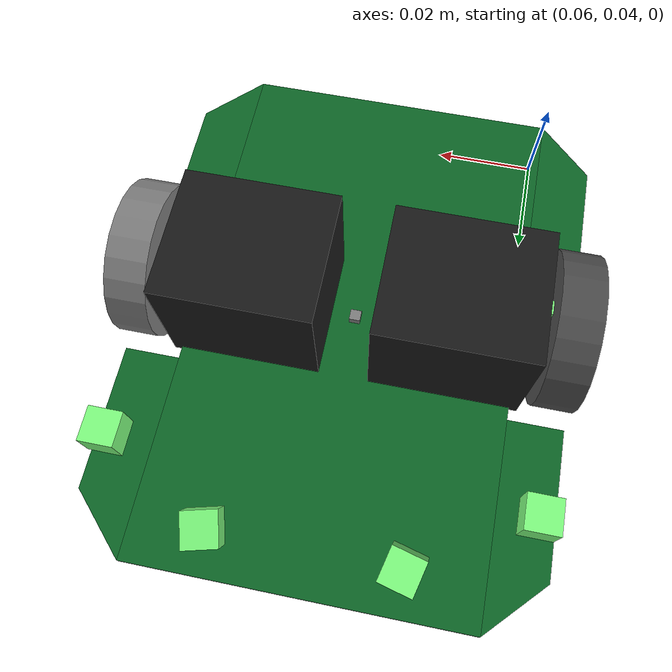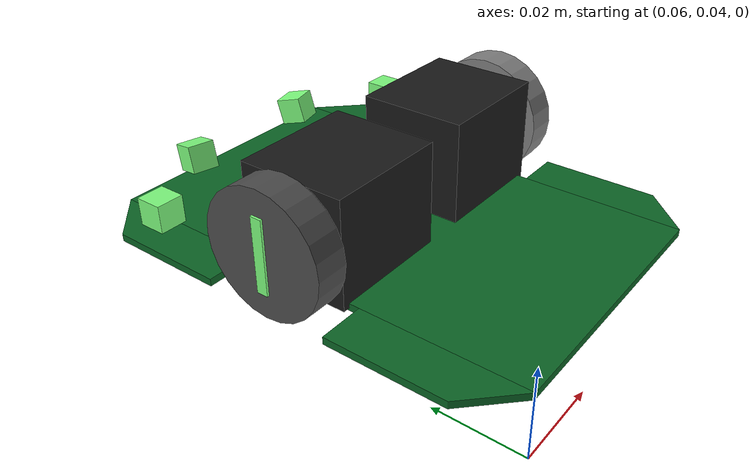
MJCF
<mujoco model="micromouse">

    <asset>
        <mesh name="coner" vertex="0 0 -0.0008  0.036 0 -0.0008  0.026 0.01 -0.0008  0 0.01 -0.0008  0 0 0.0008  0.036 0 0.0008  0.026 0.01 0.0008  0 0.01 0.0008"/>
    </asset>

    <worldbody>
        <light diffuse=".5 .5 .5" pos="0 0 10" dir="0 0 -1"/>

        <body pos="0.09 0.09 0.012" euler="0 0 90">
            <freejoint />
            <body name="torso">
                <geom name="mein_body1" type="box" friction="0.0 0.0 0.0" size="0.05 0.03 0.0008" rgba="0.05 0.4 0.15 1" pos="0 0 0.002" mass="4.65e-3"/>
                <geom name="mein_body2" type="mesh"  mesh="coner" friction="0.0 0.0 0.0" rgba="0.05 0.4 0.15 1" pos="0.014 0.03 0.002" mass="4.65e-3"/>
                <geom name="mein_body3" type="mesh"  mesh="coner" friction="0.0 0.0 0.0" rgba="0.05 0.4 0.15 1" pos="0.014 -0.03 0.002" euler="180 0 0" mass="4.65e-3"/>
                <geom name="mein_body4" type="mesh"  mesh="coner" friction="0.0 0.0 0.0" rgba="0.05 0.4 0.15 1" pos="-0.014  0.03 0.002" euler="0 180 0" mass="4.65e-3"/>
                <geom name="mein_body5" type="mesh"  mesh="coner" friction="0.0 0.0 0.0" rgba="0.05 0.4 0.15 1" pos="-0.014 -0.03 0.002" euler="180 180 0" mass="4.65e-3"/>

                <!--接触判定領域（この中に入ってるgeomが接触すると，センサ値としてその値を取得できる）-->
                <site name = "hit_box1" type = "box" size = "0.02 0.043 0.0008" pos="0.032 0 0.002" rgba="1 1 0 0"/>
                <site name = "hit_box2" type = "box" size = "0.02 0.043 0.0008" pos="-0.032 0 0.002" rgba="1 1 0 0"/>
            </body>

            <!-- zaxisの３つめ　0.1でちょい上向き -->
            <site name="sensor_left_front" type="box" size="0.003 0.003 0.003" pos="0.031 0.036 0.01" zaxis="1 0 -0.01" rgba=".5 1 .5 1"/>
            <site name="sensor_left_side" type="box" size="0.003 0.003 0.003" pos="0.043 0.016 0.01" zaxis="0.25 1 0" rgba=".5 1 .5 1"/>
            <site name="sensor_right_front" type="box" size="0.003 0.003 0.003" pos="0.031 -0.036 0.01" zaxis="1 0 -0.01" rgba=".5 1 .5 1"/>
            <site name="sensor_right_side" type="box" size="0.003 0.003 0.003" pos="0.043 -0.016 0.01" zaxis="0.25 -1 0" rgba=".5 1 .5 1"/>
            <site name="accerometer" type="box" size="0.001 0.001 0.001" pos="0 0 0.0033"/>
            <site name="gyro" type="box" size="0.001 0.001 0.001" pos="0 0 0.0033"/>

            <body name="left wheel" pos="-0.0 0.036 0.0135" zaxis="0 1 0">
                <joint name="left wheel joint" type="hinge" axis="0 0 1" limited="false" damping='5.4e-5' />

                <geom type="cylinder" size="0.0135 0.0035" friction="1.0 0 0"  rgba=".3 .3 0.3 1" mass="50e-3"/>
                <site type="box" size = "0.0012 0.008 0.004" rgba=".5 1 .5 1"/>
            </body>

            <body name="right wheel" pos="-0.0 -0.036 0.0135" zaxis="0 1 0">
                <joint name="right wheel joint" type="hinge" axis="0 0 1" limited="false" damping='5.4e-5' />
                <geom type="cylinder" size="0.0135 0.0035" friction="1.0 0 0" mass="50e-3"/>
                <site type="box" size = "0.0012 0.008 0.004" rgba=".5 1 .5 1"/>
            </body>

            <body name="motorbox1" pos="0 -0.018 0.0135" >
                <geom type="box" size="0.0117 0.0135 0.0117" rgba="0.1 0.1 0.1 1" mass="50e-3"/>
            </body>

            <body name="motorbox2" pos="0 0.018 0.0135">
                <geom type="box" size="0.0117 0.0135 0.0117" rgba="0.1 0.1 0.1 1" mass="50e-3"/>
            </body>

            <!--トラッキングカメラを装着-->
            <camera name="camera_name" mode="track" pos="0 0 1" euler="0 -5 -90" fovy="60"/> <!--トラッキングカメラを装着-->

        </body>
    </worldbody>

    <actuator>
        <motor name="right" joint="right wheel joint" gear="0.3e-2" ctrllimited="true" ctrlrange="-3 3"/> ctrlrangeで入力の値の範囲を決められる
        <motor name="left"  joint="left wheel joint"  gear="0.3e-2" ctrllimited="true" ctrlrange="-3 3"/>
    </actuator>

    <sensor>
        <rangefinder name="LF" site="sensor_left_front" cutoff="0.15"/>
        <rangefinder name="LS" site="sensor_left_side" cutoff="0.15"/>
        <rangefinder name="RF" site="sensor_right_front" cutoff="0.15"/>
        <rangefinder name="RS" site="sensor_right_side" cutoff="0.15"/>
        <touch name = "HB1" site = "hit_box1"/>
        <touch name = "HB2" site = "hit_box2"/>
        <accelerometer name="Accel" site="accerometer"/>
        <gyro name="Gyro" site="gyro"/>
    </sensor>

</mujoco>
